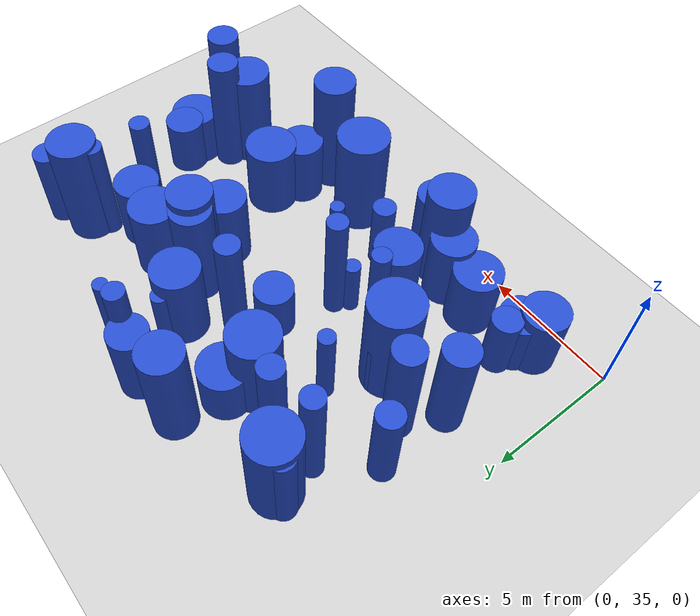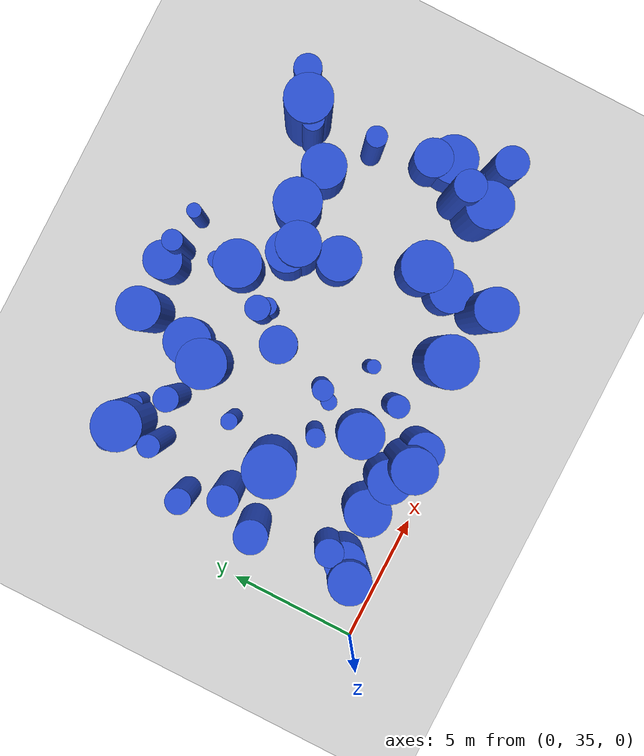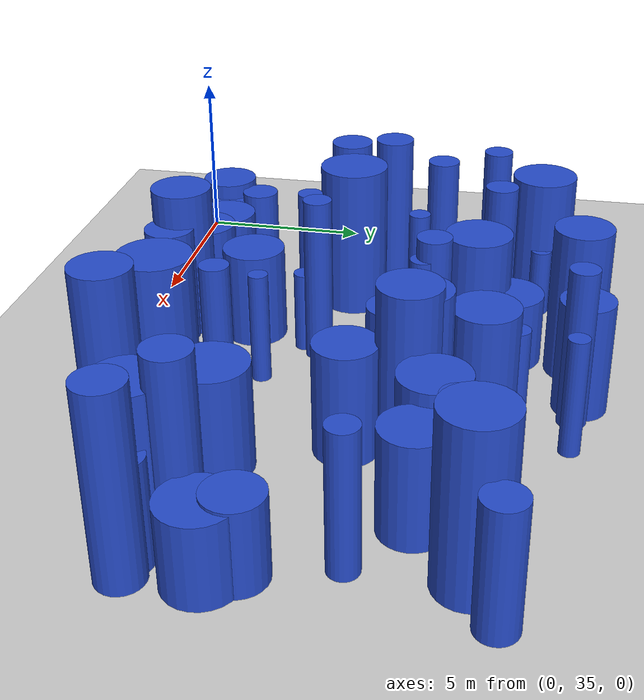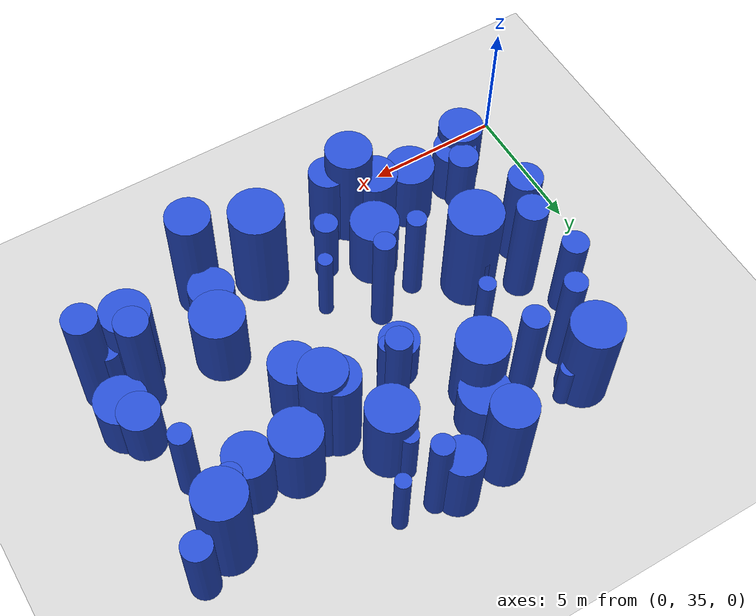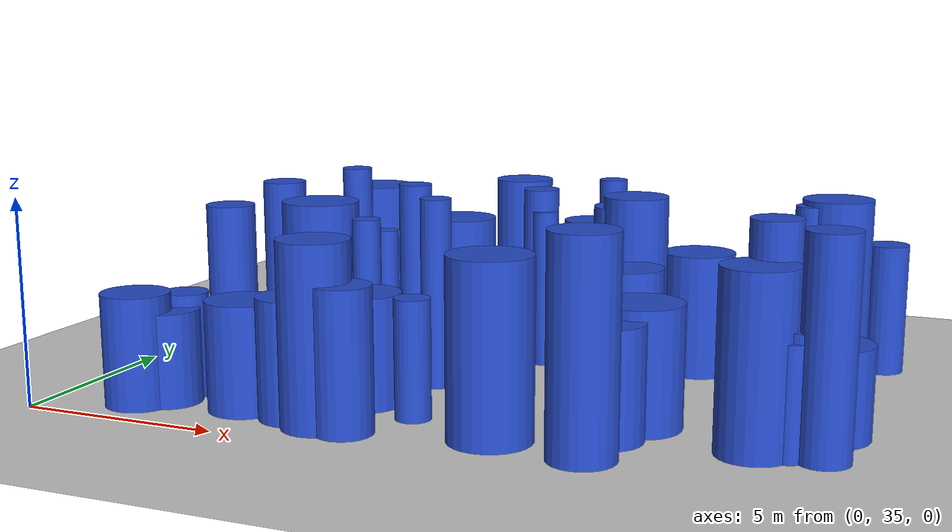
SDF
<sdf version="1.6">
 <world name="default">
  <model name="ground_plane">
   <static>1</static>
   <link name="link">
    <collision name="collision">
     <geometry><plane><normal>0 0 1</normal><size>100 100</size></plane></geometry>
     <surface><friction><ode><mu>100</mu><mu2>50</mu2></ode></friction></surface>
    </collision>
    <visual name="visual">
     <cast_shadows>0</cast_shadows>
     <geometry><plane><normal>0 0 1</normal><size>100 100</size></plane></geometry>
     <material>
      <script><uri>file://media/materials/scripts/gazebo.material</uri><name>Gazebo/Grey</name></script>
     </material>
    </visual>
   </link>
  </model>
  <model name="24">
   <static>0</static>
   <link name="link">
    <inertial>
     <mass>2</mass>
     <inertia><ixx>3.77941</ixx><ixy>0</ixy><ixz>0</ixz><iyy>3.77941</iyy><iyz>0</iyz><izz>0.148371</izz></inertia>
    </inertial>
    <collision name="collision">
     <geometry><cylinder><length>4.71502</length><radius>0.38519</radius></cylinder></geometry>
     <surface><contact><collide_without_contact>1</collide_without_contact></contact></surface>
    </collision>
    <visual name="visual">
     <geometry><cylinder><length>4.71502</length><radius>0.38519</radius></cylinder></geometry>
     <material>
      <script><uri>file://media/materials/scripts/gazebo.material</uri><name>Gazebo/Blue</name></script>
     </material>
    </visual>
    <gravity>0</gravity>
   </link>
   <pose>8.12711 40.4296 2.35751 0 -0 0</pose>
  </model>
  <model name="41">
   <static>0</static>
   <link name="link">
    <inertial>
     <mass>2</mass>
     <inertia><ixx>2.43129</ixx><ixy>0</ixy><ixz>0</ixz><iyy>2.43129</iyy><iyz>0</iyz><izz>0.15694</izz></inertia>
    </inertial>
    <collision name="collision">
     <geometry><cylinder><length>3.75725</length><radius>0.396156</radius></cylinder></geometry>
     <surface><contact><collide_without_contact>1</collide_without_contact></contact></surface>
    </collision>
    <visual name="visual">
     <geometry><cylinder><length>3.75725</length><radius>0.396156</radius></cylinder></geometry>
     <material>
      <script><uri>file://media/materials/scripts/gazebo.material</uri><name>Gazebo/Blue</name></script>
     </material>
    </visual>
    <gravity>0</gravity>
   </link>
   <pose>16.9986 42.8262 1.87863 0 -0 0</pose>
  </model>
  <model name="47">
   <static>0</static>
   <link name="link">
    <inertial>
     <mass>2</mass>
     <inertia><ixx>4.39041</ixx><ixy>0</ixy><ixz>0</ixz><iyy>4.39041</iyy><iyz>0</iyz><izz>0.626142</izz></inertia>
    </inertial>
    <collision name="collision">
     <geometry><cylinder><length>4.94611</length><radius>0.791291</radius></cylinder></geometry>
     <surface><contact><collide_without_contact>1</collide_without_contact></contact></surface>
    </collision>
    <visual name="visual">
     <geometry><cylinder><length>4.94611</length><radius>0.791291</radius></cylinder></geometry>
     <material>
      <script><uri>file://media/materials/scripts/gazebo.material</uri><name>Gazebo/Blue</name></script>
     </material>
    </visual>
    <gravity>0</gravity>
   </link>
   <pose>13.3403 36.3856 2.47306 0 -0 0</pose>
  </model>
  <model name="51">
   <static>0</static>
   <link name="link">
    <inertial>
     <mass>2</mass>
     <inertia><ixx>2.45508</ixx><ixy>0</ixy><ixz>0</ixz><iyy>2.45508</iyy><iyz>0</iyz><izz>0.2284</izz></inertia>
    </inertial>
    <collision name="collision">
     <geometry><cylinder><length>3.7477</length><radius>0.477912</radius></cylinder></geometry>
     <surface><contact><collide_without_contact>1</collide_without_contact></contact></surface>
    </collision>
    <visual name="visual">
     <geometry><cylinder><length>3.7477</length><radius>0.477912</radius></cylinder></geometry>
     <material>
      <script><uri>file://media/materials/scripts/gazebo.material</uri><name>Gazebo/Blue</name></script>
     </material>
    </visual>
    <gravity>0</gravity>
   </link>
   <pose>3.10571 46.4389 1.87385 0 -0 0</pose>
  </model>
  <model name="67">
   <static>0</static>
   <link name="link">
    <inertial>
     <mass>2</mass>
     <inertia><ixx>3.83548</ixx><ixy>0</ixy><ixz>0</ixz><iyy>3.83548</iyy><iyz>0</iyz><izz>0.673844</izz></inertia>
    </inertial>
    <collision name="collision">
     <geometry><cylinder><length>4.58163</length><radius>0.82088</radius></cylinder></geometry>
     <surface><contact><collide_without_contact>1</collide_without_contact></contact></surface>
    </collision>
    <visual name="visual">
     <geometry><cylinder><length>4.58163</length><radius>0.82088</radius></cylinder></geometry>
     <material>
      <script><uri>file://media/materials/scripts/gazebo.material</uri><name>Gazebo/Blue</name></script>
     </material>
    </visual>
    <gravity>0</gravity>
   </link>
   <pose>12.2633 43.5245 2.29082 0 -0 0</pose>
  </model>
  <model name="70">
   <static>0</static>
   <link name="link">
    <inertial>
     <mass>2</mass>
     <inertia>
      <ixx>1.68909</ixx>
      <ixy>0</ixy>
      <ixz>0</ixz>
      <iyy>1.68909</iyy>
      <iyz>0</iyz>
      <izz>0.0711109</izz>
     </inertia>
    </inertial>
    <collision name="collision">
     <geometry><cylinder><length>3.14979</length><radius>0.266666</radius></cylinder></geometry>
     <surface><contact><collide_without_contact>1</collide_without_contact></contact></surface>
    </collision>
    <visual name="visual">
     <geometry><cylinder><length>3.14979</length><radius>0.266666</radius></cylinder></geometry>
     <material>
      <script><uri>file://media/materials/scripts/gazebo.material</uri><name>Gazebo/Blue</name></script>
     </material>
    </visual>
    <gravity>0</gravity>
   </link>
   <pose>9.67754 39.1381 1.5749 0 -0 0</pose>
  </model>
  <model name="77">
   <static>0</static>
   <link name="link">
    <inertial>
     <mass>2</mass>
     <inertia><ixx>3.29642</ixx><ixy>0</ixy><ixz>0</ixz><iyy>3.29642</iyy><iyz>0</iyz><izz>0.149809</izz></inertia>
    </inertial>
    <collision name="collision">
     <geometry><cylinder><length>4.39648</length><radius>0.387051</radius></cylinder></geometry>
     <surface><contact><collide_without_contact>1</collide_without_contact></contact></surface>
    </collision>
    <visual name="visual">
     <geometry><cylinder><length>4.39648</length><radius>0.387051</radius></cylinder></geometry>
     <material>
      <script><uri>file://media/materials/scripts/gazebo.material</uri><name>Gazebo/Blue</name></script>
     </material>
    </visual>
    <gravity>0</gravity>
   </link>
   <pose>10.3762 47.5174 2.19824 0 -0 0</pose>
  </model>
  <model name="103">
   <static>0</static>
   <link name="link">
    <inertial>
     <mass>2</mass>
     <inertia><ixx>2.52847</ixx><ixy>0</ixy><ixz>0</ixz><iyy>2.52847</iyy><iyz>0</iyz><izz>0.874715</izz></inertia>
    </inertial>
    <collision name="collision">
     <geometry><cylinder><length>3.54213</length><radius>0.935262</radius></cylinder></geometry>
     <surface><contact><collide_without_contact>1</collide_without_contact></contact></surface>
    </collision>
    <visual name="visual">
     <geometry><cylinder><length>3.54213</length><radius>0.935262</radius></cylinder></geometry>
     <material>
      <script><uri>file://media/materials/scripts/gazebo.material</uri><name>Gazebo/Blue</name></script>
     </material>
    </visual>
    <gravity>0</gravity>
   </link>
   <pose>6.94051 44.7004 1.77107 0 -0 0</pose>
  </model>
  <model name="107">
   <static>0</static>
   <link name="link">
    <inertial>
     <mass>2</mass>
     <inertia><ixx>1.96436</ixx><ixy>0</ixy><ixz>0</ixz><iyy>1.96436</iyy><iyz>0</iyz><izz>0.272821</izz></inertia>
    </inertial>
    <collision name="collision">
     <geometry><cylinder><length>3.31175</length><radius>0.522322</radius></cylinder></geometry>
     <surface><contact><collide_without_contact>1</collide_without_contact></contact></surface>
    </collision>
    <visual name="visual">
     <geometry><cylinder><length>3.31175</length><radius>0.522322</radius></cylinder></geometry>
     <material>
      <script><uri>file://media/materials/scripts/gazebo.material</uri><name>Gazebo/Blue</name></script>
     </material>
    </visual>
    <gravity>0</gravity>
   </link>
   <pose>18.1658 46.183 1.65587 0 -0 0</pose>
  </model>
  <model name="109">
   <static>0</static>
   <link name="link">
    <inertial>
     <mass>2</mass>
     <inertia>
      <ixx>0.949774</ixx>
      <ixy>0</ixy>
      <ixz>0</ixz>
      <iyy>0.949774</iyy>
      <iyz>0</iyz>
      <izz>0.0924293</izz>
     </inertia>
    </inertial>
    <collision name="collision">
     <geometry><cylinder><length>2.32838</length><radius>0.304022</radius></cylinder></geometry>
     <surface><contact><collide_without_contact>1</collide_without_contact></contact></surface>
    </collision>
    <visual name="visual">
     <geometry><cylinder><length>2.32838</length><radius>0.304022</radius></cylinder></geometry>
     <material>
      <script><uri>file://media/materials/scripts/gazebo.material</uri><name>Gazebo/Blue</name></script>
     </material>
    </visual>
    <gravity>0</gravity>
   </link>
   <pose>7.77465 39.9579 1.16419 0 -0 0</pose>
  </model>
  <model name="112">
   <static>0</static>
   <link name="link">
    <inertial>
     <mass>2</mass>
     <inertia><ixx>1.24524</ixx><ixy>0</ixy><ixz>0</ixz><iyy>1.24524</iyy><iyz>0</iyz><izz>0.298264</izz></inertia>
    </inertial>
    <collision name="collision">
     <geometry><cylinder><length>2.56449</length><radius>0.546136</radius></cylinder></geometry>
     <surface><contact><collide_without_contact>1</collide_without_contact></contact></surface>
    </collision>
    <visual name="visual">
     <geometry><cylinder><length>2.56449</length><radius>0.546136</radius></cylinder></geometry>
     <material>
      <script><uri>file://media/materials/scripts/gazebo.material</uri><name>Gazebo/Blue</name></script>
     </material>
    </visual>
    <gravity>0</gravity>
   </link>
   <pose>2.86458 37.4236 1.28225 0 -0 0</pose>
  </model>
  <model name="123">
   <static>0</static>
   <link name="link">
    <inertial>
     <mass>2</mass>
     <inertia><ixx>4.2969</ixx><ixy>0</ixy><ixz>0</ixz><iyy>4.2969</iyy><iyz>0</iyz><izz>0.341178</izz></inertia>
    </inertial>
    <collision name="collision">
     <geometry><cylinder><length>4.97572</length><radius>0.584104</radius></cylinder></geometry>
     <surface><contact><collide_without_contact>1</collide_without_contact></contact></surface>
    </collision>
    <visual name="visual">
     <geometry><cylinder><length>4.97572</length><radius>0.584104</radius></cylinder></geometry>
     <material>
      <script><uri>file://media/materials/scripts/gazebo.material</uri><name>Gazebo/Blue</name></script>
     </material>
    </visual>
    <gravity>0</gravity>
   </link>
   <pose>16.7188 39.1376 2.48786 0 -0 0</pose>
  </model>
  <model name="124">
   <static>0</static>
   <link name="link">
    <inertial>
     <mass>2</mass>
     <inertia><ixx>1.56828</ixx><ixy>0</ixy><ixz>0</ixz><iyy>1.56828</iyy><iyz>0</iyz><izz>0.792169</izz></inertia>
    </inertial>
    <collision name="collision">
     <geometry><cylinder><length>2.65201</length><radius>0.890039</radius></cylinder></geometry>
     <surface><contact><collide_without_contact>1</collide_without_contact></contact></surface>
    </collision>
    <visual name="visual">
     <geometry><cylinder><length>2.65201</length><radius>0.890039</radius></cylinder></geometry>
     <material>
      <script><uri>file://media/materials/scripts/gazebo.material</uri><name>Gazebo/Blue</name></script>
     </material>
    </visual>
    <gravity>0</gravity>
   </link>
   <pose>4.8166 36.845 1.32601 0 -0 0</pose>
  </model>
  <model name="127">
   <static>0</static>
   <link name="link">
    <inertial>
     <mass>2</mass>
     <inertia><ixx>3.22287</ixx><ixy>0</ixy><ixz>0</ixz><iyy>3.22287</iyy><iyz>0</iyz><izz>0.762799</izz></inertia>
    </inertial>
    <collision name="collision">
     <geometry><cylinder><length>4.12902</length><radius>0.873384</radius></cylinder></geometry>
     <surface><contact><collide_without_contact>1</collide_without_contact></contact></surface>
    </collision>
    <visual name="visual">
     <geometry><cylinder><length>4.12902</length><radius>0.873384</radius></cylinder></geometry>
     <material>
      <script><uri>file://media/materials/scripts/gazebo.material</uri><name>Gazebo/Blue</name></script>
     </material>
    </visual>
    <gravity>0</gravity>
   </link>
   <pose>16.6059 38.1571 2.06451 0 -0 0</pose>
  </model>
  <model name="136">
   <static>0</static>
   <link name="link">
    <inertial>
     <mass>2</mass>
     <inertia><ixx>3.70332</ixx><ixy>0</ixy><ixz>0</ixz><iyy>3.70332</iyy><iyz>0</iyz><izz>0.955801</izz></inertia>
    </inertial>
    <collision name="collision">
     <geometry><cylinder><length>4.39915</length><radius>0.977651</radius></cylinder></geometry>
     <surface><contact><collide_without_contact>1</collide_without_contact></contact></surface>
    </collision>
    <visual name="visual">
     <geometry><cylinder><length>4.39915</length><radius>0.977651</radius></cylinder></geometry>
     <material>
      <script><uri>file://media/materials/scripts/gazebo.material</uri><name>Gazebo/Blue</name></script>
     </material>
    </visual>
    <gravity>0</gravity>
   </link>
   <pose>4.72085 40.8118 2.19957 0 -0 0</pose>
  </model>
  <model name="144">
   <static>0</static>
   <link name="link">
    <inertial>
     <mass>2</mass>
     <inertia><ixx>1.62736</ixx><ixy>0</ixy><ixz>0</ixz><iyy>1.62736</iyy><iyz>0</iyz><izz>0.775463</izz></inertia>
    </inertial>
    <collision name="collision">
     <geometry><cylinder><length>2.72723</length><radius>0.880604</radius></cylinder></geometry>
     <surface><contact><collide_without_contact>1</collide_without_contact></contact></surface>
    </collision>
    <visual name="visual">
     <geometry><cylinder><length>2.72723</length><radius>0.880604</radius></cylinder></geometry>
     <material>
      <script><uri>file://media/materials/scripts/gazebo.material</uri><name>Gazebo/Blue</name></script>
     </material>
    </visual>
    <gravity>0</gravity>
   </link>
   <pose>7.22925 38.3606 1.36361 0 -0 0</pose>
  </model>
  <model name="148">
   <static>0</static>
   <link name="link">
    <inertial>
     <mass>2</mass>
     <inertia><ixx>3.77434</ixx><ixy>0</ixy><ixz>0</ixz><iyy>3.77434</iyy><iyz>0</iyz><izz>0.802966</izz></inertia>
    </inertial>
    <collision name="collision">
     <geometry><cylinder><length>4.49857</length><radius>0.896084</radius></cylinder></geometry>
     <surface><contact><collide_without_contact>1</collide_without_contact></contact></surface>
    </collision>
    <visual name="visual">
     <geometry><cylinder><length>4.49857</length><radius>0.896084</radius></cylinder></geometry>
     <material>
      <script><uri>file://media/materials/scripts/gazebo.material</uri><name>Gazebo/Blue</name></script>
     </material>
    </visual>
    <gravity>0</gravity>
   </link>
   <pose>16.9609 45.5384 2.24929 0 -0 0</pose>
  </model>
  <model name="149">
   <static>0</static>
   <link name="link">
    <inertial>
     <mass>2</mass>
     <inertia>
      <ixx>1.56013</ixx>
      <ixy>0</ixy>
      <ixz>0</ixz>
      <iyy>1.56013</iyy>
      <iyz>0</iyz>
      <izz>0.0696492</izz>
     </inertia>
    </inertial>
    <collision name="collision">
     <geometry><cylinder><length>3.0252</length><radius>0.263911</radius></cylinder></geometry>
     <surface><contact><collide_without_contact>1</collide_without_contact></contact></surface>
    </collision>
    <visual name="visual">
     <geometry><cylinder><length>3.0252</length><radius>0.263911</radius></cylinder></geometry>
     <material>
      <script><uri>file://media/materials/scripts/gazebo.material</uri><name>Gazebo/Blue</name></script>
     </material>
    </visual>
    <gravity>0</gravity>
   </link>
   <pose>4.93171 40.2692 1.5126 0 -0 0</pose>
  </model>
  <model name="150">
   <static>0</static>
   <link name="link">
    <inertial>
     <mass>2</mass>
     <inertia>
      <ixx>0.989811</ixx>
      <ixy>0</ixy>
      <ixz>0</ixz>
      <iyy>0.989811</iyy>
      <iyz>0</iyz>
      <izz>0.088194</izz>
     </inertia>
    </inertial>
    <collision name="collision">
     <geometry><cylinder><length>2.38208</length><radius>0.296975</radius></cylinder></geometry>
     <surface><contact><collide_without_contact>1</collide_without_contact></contact></surface>
    </collision>
    <visual name="visual">
     <geometry><cylinder><length>2.38208</length><radius>0.296975</radius></cylinder></geometry>
     <material>
      <script><uri>file://media/materials/scripts/gazebo.material</uri><name>Gazebo/Blue</name></script>
     </material>
    </visual>
    <gravity>0</gravity>
   </link>
   <pose>4.71128 41.4967 1.19104 0 -0 0</pose>
  </model>
  <model name="153">
   <static>0</static>
   <link name="link">
    <inertial>
     <mass>2</mass>
     <inertia>
      <ixx>1.95078</ixx>
      <ixy>0</ixy>
      <ixz>0</ixz>
      <iyy>1.95078</iyy>
      <iyz>0</iyz>
      <izz>0.0955632</izz>
     </inertia>
    </inertial>
    <collision name="collision">
     <geometry><cylinder><length>3.37906</length><radius>0.309133</radius></cylinder></geometry>
     <surface><contact><collide_without_contact>1</collide_without_contact></contact></surface>
    </collision>
    <visual name="visual">
     <geometry><cylinder><length>3.37906</length><radius>0.309133</radius></cylinder></geometry>
     <material>
      <script><uri>file://media/materials/scripts/gazebo.material</uri><name>Gazebo/Blue</name></script>
     </material>
    </visual>
    <gravity>0</gravity>
   </link>
   <pose>5.55025 42.8779 1.68953 0 -0 0</pose>
  </model>
  <model name="161">
   <static>0</static>
   <link name="link">
    <inertial>
     <mass>2</mass>
     <inertia><ixx>3.76279</ixx><ixy>0</ixy><ixz>0</ixz><iyy>3.76279</iyy><iyz>0</iyz><izz>0.168409</izz></inertia>
    </inertial>
    <collision name="collision">
     <geometry><cylinder><length>4.69803</length><radius>0.410377</radius></cylinder></geometry>
     <surface><contact><collide_without_contact>1</collide_without_contact></contact></surface>
    </collision>
    <visual name="visual">
     <geometry><cylinder><length>4.69803</length><radius>0.410377</radius></cylinder></geometry>
     <material>
      <script><uri>file://media/materials/scripts/gazebo.material</uri><name>Gazebo/Blue</name></script>
     </material>
    </visual>
    <gravity>0</gravity>
   </link>
   <pose>3.6196 44.9291 2.34902 0 -0 0</pose>
  </model>
  <model name="175">
   <static>0</static>
   <link name="link">
    <inertial>
     <mass>2</mass>
     <inertia><ixx>2.04164</ixx><ixy>0</ixy><ixz>0</ixz><iyy>2.04164</iyy><iyz>0</iyz><izz>0.831871</izz></inertia>
    </inertial>
    <collision name="collision">
     <geometry><cylinder><length>3.12318</length><radius>0.91207</radius></cylinder></geometry>
     <surface><contact><collide_without_contact>1</collide_without_contact></contact></surface>
    </collision>
    <visual name="visual">
     <geometry><cylinder><length>3.12318</length><radius>0.91207</radius></cylinder></geometry>
     <material>
      <script><uri>file://media/materials/scripts/gazebo.material</uri><name>Gazebo/Blue</name></script>
     </material>
    </visual>
    <gravity>0</gravity>
   </link>
   <pose>13.7304 44.3128 1.56159 0 -0 0</pose>
  </model>
  <model name="191">
   <static>0</static>
   <link name="link">
    <inertial>
     <mass>2</mass>
     <inertia><ixx>2.78748</ixx><ixy>0</ixy><ixz>0</ixz><iyy>2.78748</iyy><iyz>0</iyz><izz>0.109121</izz></inertia>
    </inertial>
    <collision name="collision">
     <geometry><cylinder><length>4.04939</length><radius>0.330335</radius></cylinder></geometry>
     <surface><contact><collide_without_contact>1</collide_without_contact></contact></surface>
    </collision>
    <visual name="visual">
     <geometry><cylinder><length>4.04939</length><radius>0.330335</radius></cylinder></geometry>
     <material>
      <script><uri>file://media/materials/scripts/gazebo.material</uri><name>Gazebo/Blue</name></script>
     </material>
    </visual>
    <gravity>0</gravity>
   </link>
   <pose>9.8422 43.5022 2.02469 0 -0 0</pose>
  </model>
  <model name="193">
   <static>0</static>
   <link name="link">
    <inertial>
     <mass>2</mass>
     <inertia><ixx>1.21033</ixx><ixy>0</ixy><ixz>0</ixz><iyy>1.21033</iyy><iyz>0</iyz><izz>0.860285</izz></inertia>
    </inertial>
    <collision name="collision">
     <geometry><cylinder><length>2.16359</length><radius>0.927516</radius></cylinder></geometry>
     <surface><contact><collide_without_contact>1</collide_without_contact></contact></surface>
    </collision>
    <visual name="visual">
     <geometry><cylinder><length>2.16359</length><radius>0.927516</radius></cylinder></geometry>
     <material>
      <script><uri>file://media/materials/scripts/gazebo.material</uri><name>Gazebo/Blue</name></script>
     </material>
    </visual>
    <gravity>0</gravity>
   </link>
   <pose>17.8982 39.943 1.08179 0 -0 0</pose>
  </model>
  <model name="201">
   <static>0</static>
   <link name="link">
    <inertial>
     <mass>2</mass>
     <inertia><ixx>1.10359</ixx><ixy>0</ixy><ixz>0</ixz><iyy>1.10359</iyy><iyz>0</iyz><izz>0.841668</izz></inertia>
    </inertial>
    <collision name="collision">
     <geometry><cylinder><length>2.024</length><radius>0.917424</radius></cylinder></geometry>
     <surface><contact><collide_without_contact>1</collide_without_contact></contact></surface>
    </collision>
    <visual name="visual">
     <geometry><cylinder><length>2.024</length><radius>0.917424</radius></cylinder></geometry>
     <material>
      <script><uri>file://media/materials/scripts/gazebo.material</uri><name>Gazebo/Blue</name></script>
     </material>
    </visual>
    <gravity>0</gravity>
   </link>
   <pose>7.36399 45.673 1.012 0 -0 0</pose>
  </model>
  <model name="217">
   <static>0</static>
   <link name="link">
    <inertial>
     <mass>2</mass>
     <inertia>
      <ixx>0.720912</ixx>
      <ixy>0</ixy>
      <ixz>0</ixz>
      <iyy>0.720912</iyy>
      <iyz>0</iyz>
      <izz>0.0930883</izz>
     </inertia>
    </inertial>
    <collision name="collision">
     <geometry><cylinder><length>2.01152</length><radius>0.305104</radius></cylinder></geometry>
     <surface><contact><collide_without_contact>1</collide_without_contact></contact></surface>
    </collision>
    <visual name="visual">
     <geometry><cylinder><length>2.01152</length><radius>0.305104</radius></cylinder></geometry>
     <material>
      <script><uri>file://media/materials/scripts/gazebo.material</uri><name>Gazebo/Blue</name></script>
     </material>
    </visual>
    <gravity>0</gravity>
   </link>
   <pose>4.47146 46.3874 1.00576 0 -0 0</pose>
  </model>
  <model name="228">
   <static>0</static>
   <link name="link">
    <inertial>
     <mass>2</mass>
     <inertia><ixx>3.16618</ixx><ixy>0</ixy><ixz>0</ixz><iyy>3.16618</iyy><iyz>0</iyz><izz>0.858592</izz></inertia>
    </inertial>
    <collision name="collision">
     <geometry><cylinder><length>4.05232</length><radius>0.926602</radius></cylinder></geometry>
     <surface><contact><collide_without_contact>1</collide_without_contact></contact></surface>
    </collision>
    <visual name="visual">
     <geometry><cylinder><length>4.05232</length><radius>0.926602</radius></cylinder></geometry>
     <material>
      <script><uri>file://media/materials/scripts/gazebo.material</uri><name>Gazebo/Blue</name></script>
     </material>
    </visual>
    <gravity>0</gravity>
   </link>
   <pose>3.64013 46.3281 2.02616 0 -0 0</pose>
  </model>
  <model name="233">
   <static>0</static>
   <link name="link">
    <inertial>
     <mass>2</mass>
     <inertia><ixx>3.37901</ixx><ixy>0</ixy><ixz>0</ixz><iyy>3.37901</iyy><iyz>0</iyz><izz>0.638213</izz></inertia>
    </inertial>
    <collision name="collision">
     <geometry><cylinder><length>4.28479</length><radius>0.798883</radius></cylinder></geometry>
     <surface><contact><collide_without_contact>1</collide_without_contact></contact></surface>
    </collision>
    <visual name="visual">
     <geometry><cylinder><length>4.28479</length><radius>0.798883</radius></cylinder></geometry>
     <material>
      <script><uri>file://media/materials/scripts/gazebo.material</uri><name>Gazebo/Blue</name></script>
     </material>
    </visual>
    <gravity>0</gravity>
   </link>
   <pose>7.70317 47.4986 2.14239 0 -0 0</pose>
  </model>
  <model name="244">
   <static>0</static>
   <link name="link">
    <inertial>
     <mass>2</mass>
     <inertia><ixx>1.74262</ixx><ixy>0</ixy><ixz>0</ixz><iyy>1.74262</iyy><iyz>0</iyz><izz>0.701645</izz></inertia>
    </inertial>
    <collision name="collision">
     <geometry><cylinder><length>2.88977</length><radius>0.837642</radius></cylinder></geometry>
     <surface><contact><collide_without_contact>1</collide_without_contact></contact></surface>
    </collision>
    <visual name="visual">
     <geometry><cylinder><length>2.88977</length><radius>0.837642</radius></cylinder></geometry>
     <material>
      <script><uri>file://media/materials/scripts/gazebo.material</uri><name>Gazebo/Blue</name></script>
     </material>
    </visual>
    <gravity>0</gravity>
   </link>
   <pose>6.22746 36.6822 1.44489 0 -0 0</pose>
  </model>
  <model name="249">
   <static>0</static>
   <link name="link">
    <inertial>
     <mass>2</mass>
     <inertia><ixx>1.94318</ixx><ixy>0</ixy><ixz>0</ixz><iyy>1.94318</iyy><iyz>0</iyz><izz>0.526208</izz></inertia>
    </inertial>
    <collision name="collision">
     <geometry><cylinder><length>3.17497</length><radius>0.725402</radius></cylinder></geometry>
     <surface><contact><collide_without_contact>1</collide_without_contact></contact></surface>
    </collision>
    <visual name="visual">
     <geometry><cylinder><length>3.17497</length><radius>0.725402</radius></cylinder></geometry>
     <material>
      <script><uri>file://media/materials/scripts/gazebo.material</uri><name>Gazebo/Blue</name></script>
     </material>
    </visual>
    <gravity>0</gravity>
   </link>
   <pose>9.62949 47.6964 1.58749 0 -0 0</pose>
  </model>
  <model name="257">
   <static>0</static>
   <link name="link">
    <inertial>
     <mass>2</mass>
     <inertia><ixx>4.27208</ixx><ixy>0</ixy><ixz>0</ixz><iyy>4.27208</iyy><iyz>0</iyz><izz>0.363037</izz></inertia>
    </inertial>
    <collision name="collision">
     <geometry><cylinder><length>4.95412</length><radius>0.602525</radius></cylinder></geometry>
     <surface><contact><collide_without_contact>1</collide_without_contact></contact></surface>
    </collision>
    <visual name="visual">
     <geometry><cylinder><length>4.95412</length><radius>0.602525</radius></cylinder></geometry>
     <material>
      <script><uri>file://media/materials/scripts/gazebo.material</uri><name>Gazebo/Blue</name></script>
     </material>
    </visual>
    <gravity>0</gravity>
   </link>
   <pose>18.08 38.2163 2.47706 0 -0 0</pose>
  </model>
  <model name="258">
   <static>0</static>
   <link name="link">
    <inertial>
     <mass>2</mass>
     <inertia><ixx>2.163</ixx><ixy>0</ixy><ixz>0</ixz><iyy>2.163</iyy><iyz>0</iyz><izz>0.485658</izz></inertia>
    </inertial>
    <collision name="collision">
     <geometry><cylinder><length>3.39426</length><radius>0.696892</radius></cylinder></geometry>
     <surface><contact><collide_without_contact>1</collide_without_contact></contact></surface>
    </collision>
    <visual name="visual">
     <geometry><cylinder><length>3.39426</length><radius>0.696892</radius></cylinder></geometry>
     <material>
      <script><uri>file://media/materials/scripts/gazebo.material</uri><name>Gazebo/Blue</name></script>
     </material>
    </visual>
    <gravity>0</gravity>
   </link>
   <pose>7.82364 36.1075 1.69713 0 -0 0</pose>
  </model>
  <model name="260">
   <static>0</static>
   <link name="link">
    <inertial>
     <mass>2</mass>
     <inertia><ixx>2.98662</ixx><ixy>0</ixy><ixz>0</ixz><iyy>2.98662</iyy><iyz>0</iyz><izz>0.123577</izz></inertia>
    </inertial>
    <collision name="collision">
     <geometry><cylinder><length>4.18915</length><radius>0.351536</radius></cylinder></geometry>
     <surface><contact><collide_without_contact>1</collide_without_contact></contact></surface>
    </collision>
    <visual name="visual">
     <geometry><cylinder><length>4.18915</length><radius>0.351536</radius></cylinder></geometry>
     <material>
      <script><uri>file://media/materials/scripts/gazebo.material</uri><name>Gazebo/Blue</name></script>
     </material>
    </visual>
    <gravity>0</gravity>
   </link>
   <pose>6.50693 39.8801 2.09458 0 -0 0</pose>
  </model>
  <model name="274">
   <static>0</static>
   <link name="link">
    <inertial>
     <mass>2</mass>
     <inertia><ixx>1.88267</ixx><ixy>0</ixy><ixz>0</ixz><iyy>1.88267</iyy><iyz>0</iyz><izz>0.943516</izz></inertia>
    </inertial>
    <collision name="collision">
     <geometry><cylinder><length>2.90955</length><radius>0.971348</radius></cylinder></geometry>
     <surface><contact><collide_without_contact>1</collide_without_contact></contact></surface>
    </collision>
    <visual name="visual">
     <geometry><cylinder><length>2.90955</length><radius>0.971348</radius></cylinder></geometry>
     <material>
      <script><uri>file://media/materials/scripts/gazebo.material</uri><name>Gazebo/Blue</name></script>
     </material>
    </visual>
    <gravity>0</gravity>
   </link>
   <pose>13.8131 39.0635 1.45478 0 -0 0</pose>
  </model>
  <model name="281">
   <static>0</static>
   <link name="link">
    <inertial>
     <mass>2</mass>
     <inertia><ixx>3.61277</ixx><ixy>0</ixy><ixz>0</ixz><iyy>3.61277</iyy><iyz>0</iyz><izz>0.209908</izz></inertia>
    </inertial>
    <collision name="collision">
     <geometry><cylinder><length>4.58769</length><radius>0.458157</radius></cylinder></geometry>
     <surface><contact><collide_without_contact>1</collide_without_contact></contact></surface>
    </collision>
    <visual name="visual">
     <geometry><cylinder><length>4.58769</length><radius>0.458157</radius></cylinder></geometry>
     <material>
      <script><uri>file://media/materials/scripts/gazebo.material</uri><name>Gazebo/Blue</name></script>
     </material>
    </visual>
    <gravity>0</gravity>
   </link>
   <pose>9.6243 43.7653 2.29384 0 -0 0</pose>
  </model>
  <model name="300">
   <static>0</static>
   <link name="link">
    <inertial>
     <mass>2</mass>
     <inertia><ixx>3.24895</ixx><ixy>0</ixy><ixz>0</ixz><iyy>3.24895</iyy><iyz>0</iyz><izz>0.167088</izz></inertia>
    </inertial>
    <collision name="collision">
     <geometry><cylinder><length>4.35803</length><radius>0.408764</radius></cylinder></geometry>
     <surface><contact><collide_without_contact>1</collide_without_contact></contact></surface>
    </collision>
    <visual name="visual">
     <geometry><cylinder><length>4.35803</length><radius>0.408764</radius></cylinder></geometry>
     <material>
      <script><uri>file://media/materials/scripts/gazebo.material</uri><name>Gazebo/Blue</name></script>
     </material>
    </visual>
    <gravity>0</gravity>
   </link>
   <pose>16.3887 45.0721 2.17902 0 -0 0</pose>
  </model>
  <model name="302">
   <static>0</static>
   <link name="link">
    <inertial>
     <mass>2</mass>
     <inertia><ixx>1.46096</ixx><ixy>0</ixy><ixz>0</ixz><iyy>1.46096</iyy><iyz>0</iyz><izz>0.185764</izz></inertia>
    </inertial>
    <collision name="collision">
     <geometry><cylinder><length>2.86505</length><radius>0.431004</radius></cylinder></geometry>
     <surface><contact><collide_without_contact>1</collide_without_contact></contact></surface>
    </collision>
    <visual name="visual">
     <geometry><cylinder><length>2.86505</length><radius>0.431004</radius></cylinder></geometry>
     <material>
      <script><uri>file://media/materials/scripts/gazebo.material</uri><name>Gazebo/Blue</name></script>
     </material>
    </visual>
    <gravity>0</gravity>
   </link>
   <pose>8.79788 37.6596 1.43252 0 -0 0</pose>
  </model>
  <model name="308">
   <static>0</static>
   <link name="link">
    <inertial>
     <mass>2</mass>
     <inertia><ixx>3.40626</ixx><ixy>0</ixy><ixz>0</ixz><iyy>3.40626</iyy><iyz>0</iyz><izz>0.976851</izz></inertia>
    </inertial>
    <collision name="collision">
     <geometry><cylinder><length>4.18414</length><radius>0.988358</radius></cylinder></geometry>
     <surface><contact><collide_without_contact>1</collide_without_contact></contact></surface>
    </collision>
    <visual name="visual">
     <geometry><cylinder><length>4.18414</length><radius>0.988358</radius></cylinder></geometry>
     <material>
      <script><uri>file://media/materials/scripts/gazebo.material</uri><name>Gazebo/Blue</name></script>
     </material>
    </visual>
    <gravity>0</gravity>
   </link>
   <pose>11.0567 36.8413 2.09207 0 -0 0</pose>
  </model>
  <model name="320">
   <static>0</static>
   <link name="link">
    <inertial>
     <mass>2</mass>
     <inertia><ixx>1.65125</ixx><ixy>0</ixy><ixz>0</ixz><iyy>1.65125</iyy><iyz>0</iyz><izz>0.72156</izz></inertia>
    </inertial>
    <collision name="collision">
     <geometry><cylinder><length>2.7826</length><radius>0.849447</radius></cylinder></geometry>
     <surface><contact><collide_without_contact>1</collide_without_contact></contact></surface>
    </collision>
    <visual name="visual">
     <geometry><cylinder><length>2.7826</length><radius>0.849447</radius></cylinder></geometry>
     <material>
      <script><uri>file://media/materials/scripts/gazebo.material</uri><name>Gazebo/Blue</name></script>
     </material>
    </visual>
    <gravity>0</gravity>
   </link>
   <pose>15.3691 44.0783 1.3913 0 -0 0</pose>
  </model>
  <model name="321">
   <static>0</static>
   <link name="link">
    <inertial>
     <mass>2</mass>
     <inertia><ixx>3.83467</ixx><ixy>0</ixy><ixz>0</ixz><iyy>3.83467</iyy><iyz>0</iyz><izz>0.315015</izz></inertia>
    </inertial>
    <collision name="collision">
     <geometry><cylinder><length>4.69712</length><radius>0.561262</radius></cylinder></geometry>
     <surface><contact><collide_without_contact>1</collide_without_contact></contact></surface>
    </collision>
    <visual name="visual">
     <geometry><cylinder><length>4.69712</length><radius>0.561262</radius></cylinder></geometry>
     <material>
      <script><uri>file://media/materials/scripts/gazebo.material</uri><name>Gazebo/Blue</name></script>
     </material>
    </visual>
    <gravity>0</gravity>
   </link>
   <pose>3.11663 41.7697 2.34856 0 -0 0</pose>
  </model>
  <model name="327">
   <static>0</static>
   <link name="link">
    <inertial>
     <mass>2</mass>
     <inertia><ixx>1.10869</ixx><ixy>0</ixy><ixz>0</ixz><iyy>1.10869</iyy><iyz>0</iyz><izz>0.553855</izz></inertia>
    </inertial>
    <collision name="collision">
     <geometry><cylinder><length>2.23396</length><radius>0.744214</radius></cylinder></geometry>
     <surface><contact><collide_without_contact>1</collide_without_contact></contact></surface>
    </collision>
    <visual name="visual">
     <geometry><cylinder><length>2.23396</length><radius>0.744214</radius></cylinder></geometry>
     <material>
      <script><uri>file://media/materials/scripts/gazebo.material</uri><name>Gazebo/Blue</name></script>
     </material>
    </visual>
    <gravity>0</gravity>
   </link>
   <pose>17.5872 40.6451 1.11698 0 -0 0</pose>
  </model>
  <model name="331">
   <static>0</static>
   <link name="link">
    <inertial>
     <mass>2</mass>
     <inertia><ixx>1.53195</ixx><ixy>0</ixy><ixz>0</ixz><iyy>1.53195</iyy><iyz>0</iyz><izz>0.672093</izz></inertia>
    </inertial>
    <collision name="collision">
     <geometry><cylinder><length>2.67869</length><radius>0.819813</radius></cylinder></geometry>
     <surface><contact><collide_without_contact>1</collide_without_contact></contact></surface>
    </collision>
    <visual name="visual">
     <geometry><cylinder><length>2.67869</length><radius>0.819813</radius></cylinder></geometry>
     <material>
      <script><uri>file://media/materials/scripts/gazebo.material</uri><name>Gazebo/Blue</name></script>
     </material>
    </visual>
    <gravity>0</gravity>
   </link>
   <pose>13.4401 37.8543 1.33935 0 -0 0</pose>
  </model>
  <model name="335">
   <static>0</static>
   <link name="link">
    <inertial>
     <mass>2</mass>
     <inertia><ixx>3.33476</ixx><ixy>0</ixy><ixz>0</ixz><iyy>3.33476</iyy><iyz>0</iyz><izz>0.594148</izz></inertia>
    </inertial>
    <collision name="collision">
     <geometry><cylinder><length>4.26921</length><radius>0.77081</radius></cylinder></geometry>
     <surface><contact><collide_without_contact>1</collide_without_contact></contact></surface>
    </collision>
    <visual name="visual">
     <geometry><cylinder><length>4.26921</length><radius>0.77081</radius></cylinder></geometry>
     <material>
      <script><uri>file://media/materials/scripts/gazebo.material</uri><name>Gazebo/Blue</name></script>
     </material>
    </visual>
    <gravity>0</gravity>
   </link>
   <pose>11.8724 43.7785 2.1346 0 -0 0</pose>
  </model>
  <model name="351">
   <static>0</static>
   <link name="link">
    <inertial>
     <mass>2</mass>
     <inertia><ixx>1.2338</ixx><ixy>0</ixy><ixz>0</ixz><iyy>1.2338</iyy><iyz>0</iyz><izz>0.101336</izz></inertia>
    </inertial>
    <collision name="collision">
     <geometry><cylinder><length>2.66436</length><radius>0.318333</radius></cylinder></geometry>
     <surface><contact><collide_without_contact>1</collide_without_contact></contact></surface>
    </collision>
    <visual name="visual">
     <geometry><cylinder><length>2.66436</length><radius>0.318333</radius></cylinder></geometry>
     <material>
      <script><uri>file://media/materials/scripts/gazebo.material</uri><name>Gazebo/Blue</name></script>
     </material>
    </visual>
    <gravity>0</gravity>
   </link>
   <pose>10.5482 46.0363 1.33218 0 -0 0</pose>
  </model>
  <model name="365">
   <static>0</static>
   <link name="link">
    <inertial>
     <mass>2</mass>
     <inertia><ixx>2.4537</ixx><ixy>0</ixy><ixz>0</ixz><iyy>2.4537</iyy><iyz>0</iyz><izz>0.230047</izz></inertia>
    </inertial>
    <collision name="collision">
     <geometry><cylinder><length>3.74594</length><radius>0.479632</radius></cylinder></geometry>
     <surface><contact><collide_without_contact>1</collide_without_contact></contact></surface>
    </collision>
    <visual name="visual">
     <geometry><cylinder><length>3.74594</length><radius>0.479632</radius></cylinder></geometry>
     <material>
      <script><uri>file://media/materials/scripts/gazebo.material</uri><name>Gazebo/Blue</name></script>
     </material>
    </visual>
    <gravity>0</gravity>
   </link>
   <pose>2.21589 43.184 1.87297 0 -0 0</pose>
  </model>
  <model name="380">
   <static>0</static>
   <link name="link">
    <inertial>
     <mass>2</mass>
     <inertia><ixx>1.43417</ixx><ixy>0</ixy><ixz>0</ixz><iyy>1.43417</iyy><iyz>0</iyz><izz>0.251022</izz></inertia>
    </inertial>
    <collision name="collision">
     <geometry><cylinder><length>2.80214</length><radius>0.501021</radius></cylinder></geometry>
     <surface><contact><collide_without_contact>1</collide_without_contact></contact></surface>
    </collision>
    <visual name="visual">
     <geometry><cylinder><length>2.80214</length><radius>0.501021</radius></cylinder></geometry>
     <material>
      <script><uri>file://media/materials/scripts/gazebo.material</uri><name>Gazebo/Blue</name></script>
     </material>
    </visual>
    <gravity>0</gravity>
   </link>
   <pose>17.5604 38.3113 1.40107 0 -0 0</pose>
  </model>
  <model name="389">
   <static>0</static>
   <link name="link">
    <inertial>
     <mass>2</mass>
     <inertia><ixx>1.16901</ixx><ixy>0</ixy><ixz>0</ixz><iyy>1.16901</iyy><iyz>0</iyz><izz>0.107043</izz></inertia>
    </inertial>
    <collision name="collision">
     <geometry><cylinder><length>2.58707</length><radius>0.327174</radius></cylinder></geometry>
     <surface><contact><collide_without_contact>1</collide_without_contact></contact></surface>
    </collision>
    <visual name="visual">
     <geometry><cylinder><length>2.58707</length><radius>0.327174</radius></cylinder></geometry>
     <material>
      <script><uri>file://media/materials/scripts/gazebo.material</uri><name>Gazebo/Blue</name></script>
     </material>
    </visual>
    <gravity>0</gravity>
   </link>
   <pose>17.3742 37.997 1.29353 0 -0 0</pose>
  </model>
  <model name="391">
   <static>0</static>
   <link name="link">
    <inertial>
     <mass>2</mass>
     <inertia>
      <ixx>1.77857</ixx>
      <ixy>0</ixy>
      <ixz>0</ixz>
      <iyy>1.77857</iyy>
      <iyz>0</iyz>
      <izz>0.0766056</izz>
     </inertia>
    </inertial>
    <collision name="collision">
     <geometry><cylinder><length>3.23134</length><radius>0.276777</radius></cylinder></geometry>
     <surface><contact><collide_without_contact>1</collide_without_contact></contact></surface>
    </collision>
    <visual name="visual">
     <geometry><cylinder><length>3.23134</length><radius>0.276777</radius></cylinder></geometry>
     <material>
      <script><uri>file://media/materials/scripts/gazebo.material</uri><name>Gazebo/Blue</name></script>
     </material>
    </visual>
    <gravity>0</gravity>
   </link>
   <pose>11.7278 47.4916 1.61567 0 -0 0</pose>
  </model>
  <model name="394">
   <static>0</static>
   <link name="link">
    <inertial>
     <mass>2</mass>
     <inertia><ixx>3.18966</ixx><ixy>0</ixy><ixz>0</ixz><iyy>3.18966</iyy><iyz>0</iyz><izz>0.389553</izz></inertia>
    </inertial>
    <collision name="collision">
     <geometry><cylinder><length>4.23902</length><radius>0.624142</radius></cylinder></geometry>
     <surface><contact><collide_without_contact>1</collide_without_contact></contact></surface>
    </collision>
    <visual name="visual">
     <geometry><cylinder><length>4.23902</length><radius>0.624142</radius></cylinder></geometry>
     <material>
      <script><uri>file://media/materials/scripts/gazebo.material</uri><name>Gazebo/Blue</name></script>
     </material>
    </visual>
    <gravity>0</gravity>
   </link>
   <pose>2.3538 40.3178 2.11951 0 -0 0</pose>
  </model>
  <model name="438">
   <static>0</static>
   <link name="link">
    <inertial>
     <mass>2</mass>
     <inertia><ixx>2.24096</ixx><ixy>0</ixy><ixz>0</ixz><iyy>2.24096</iyy><iyz>0</iyz><izz>0.807712</izz></inertia>
    </inertial>
    <collision name="collision">
     <geometry><cylinder><length>3.32004</length><radius>0.898728</radius></cylinder></geometry>
     <surface><contact><collide_without_contact>1</collide_without_contact></contact></surface>
    </collision>
    <visual name="visual">
     <geometry><cylinder><length>3.32004</length><radius>0.898728</radius></cylinder></geometry>
     <material>
      <script><uri>file://media/materials/scripts/gazebo.material</uri><name>Gazebo/Blue</name></script>
     </material>
    </visual>
    <gravity>0</gravity>
   </link>
   <pose>10.7387 45.217 1.66002 0 -0 0</pose>
  </model>
  <model name="439">
   <static>0</static>
   <link name="link">
    <inertial>
     <mass>2</mass>
     <inertia><ixx>3.18101</ixx><ixy>0</ixy><ixz>0</ixz><iyy>3.18101</iyy><iyz>0</iyz><izz>0.215295</izz></inertia>
    </inertial>
    <collision name="collision">
     <geometry><cylinder><length>4.2942</length><radius>0.463999</radius></cylinder></geometry>
     <surface><contact><collide_without_contact>1</collide_without_contact></contact></surface>
    </collision>
    <visual name="visual">
     <geometry><cylinder><length>4.2942</length><radius>0.463999</radius></cylinder></geometry>
     <material>
      <script><uri>file://media/materials/scripts/gazebo.material</uri><name>Gazebo/Blue</name></script>
     </material>
    </visual>
    <gravity>0</gravity>
   </link>
   <pose>5.31217 45.1763 2.1471 0 -0 0</pose>
  </model>
  <model name="446">
   <static>0</static>
   <link name="link">
    <inertial>
     <mass>2</mass>
     <inertia><ixx>1.57707</ixx><ixy>0</ixy><ixz>0</ixz><iyy>1.57707</iyy><iyz>0</iyz><izz>0.684981</izz></inertia>
    </inertial>
    <collision name="collision">
     <geometry><cylinder><length>2.72167</length><radius>0.827636</radius></cylinder></geometry>
     <surface><contact><collide_without_contact>1</collide_without_contact></contact></surface>
    </collision>
    <visual name="visual">
     <geometry><cylinder><length>2.72167</length><radius>0.827636</radius></cylinder></geometry>
     <material>
      <script><uri>file://media/materials/scripts/gazebo.material</uri><name>Gazebo/Blue</name></script>
     </material>
    </visual>
    <gravity>0</gravity>
   </link>
   <pose>2.24331 36.2633 1.36083 0 -0 0</pose>
  </model>
  <model name="452">
   <static>0</static>
   <link name="link">
    <inertial>
     <mass>2</mass>
     <inertia>
      <ixx>0.997415</ixx>
      <ixy>0</ixy>
      <ixz>0</ixz>
      <iyy>0.997415</iyy>
      <iyz>0</iyz>
      <izz>0.525653</izz>
     </inertia>
    </inertial>
    <collision name="collision">
     <geometry><cylinder><length>2.09941</length><radius>0.725019</radius></cylinder></geometry>
     <surface><contact><collide_without_contact>1</collide_without_contact></contact></surface>
    </collision>
    <visual name="visual">
     <geometry><cylinder><length>2.09941</length><radius>0.725019</radius></cylinder></geometry>
     <material>
      <script><uri>file://media/materials/scripts/gazebo.material</uri><name>Gazebo/Blue</name></script>
     </material>
    </visual>
    <gravity>0</gravity>
   </link>
   <pose>8.80837 42.5976 1.04971 0 -0 0</pose>
  </model>
  <model name="473">
   <static>0</static>
   <link name="link">
    <inertial>
     <mass>2</mass>
     <inertia><ixx>3.49092</ixx><ixy>0</ixy><ixz>0</ixz><iyy>3.49092</iyy><iyz>0</iyz><izz>0.718599</izz></inertia>
    </inertial>
    <collision name="collision">
     <geometry><cylinder><length>4.33471</length><radius>0.847702</radius></cylinder></geometry>
     <surface><contact><collide_without_contact>1</collide_without_contact></contact></surface>
    </collision>
    <visual name="visual">
     <geometry><cylinder><length>4.33471</length><radius>0.847702</radius></cylinder></geometry>
     <material>
      <script><uri>file://media/materials/scripts/gazebo.material</uri><name>Gazebo/Blue</name></script>
     </material>
    </visual>
    <gravity>0</gravity>
   </link>
   <pose>7.06193 36.2655 2.16735 0 -0 0</pose>
  </model>
  <model name="476">
   <static>0</static>
   <link name="link">
    <inertial>
     <mass>2</mass>
     <inertia><ixx>1.18297</ixx><ixy>0</ixy><ixz>0</ixz><iyy>1.18297</iyy><iyz>0</iyz><izz>0.633927</izz></inertia>
    </inertial>
    <collision name="collision">
     <geometry><cylinder><length>2.27948</length><radius>0.796196</radius></cylinder></geometry>
     <surface><contact><collide_without_contact>1</collide_without_contact></contact></surface>
    </collision>
    <visual name="visual">
     <geometry><cylinder><length>2.27948</length><radius>0.796196</radius></cylinder></geometry>
     <material>
      <script><uri>file://media/materials/scripts/gazebo.material</uri><name>Gazebo/Blue</name></script>
     </material>
    </visual>
    <gravity>0</gravity>
   </link>
   <pose>2.77302 36.7284 1.13974 0 -0 0</pose>
  </model>
  <model name="486">
   <static>0</static>
   <link name="link">
    <inertial>
     <mass>2</mass>
     <inertia><ixx>1.90066</ixx><ixy>0</ixy><ixz>0</ixz><iyy>1.90066</iyy><iyz>0</iyz><izz>0.703341</izz></inertia>
    </inertial>
    <collision name="collision">
     <geometry><cylinder><length>3.0486</length><radius>0.838654</radius></cylinder></geometry>
     <surface><contact><collide_without_contact>1</collide_without_contact></contact></surface>
    </collision>
    <visual name="visual">
     <geometry><cylinder><length>3.0486</length><radius>0.838654</radius></cylinder></geometry>
     <material>
      <script><uri>file://media/materials/scripts/gazebo.material</uri><name>Gazebo/Blue</name></script>
     </material>
    </visual>
    <gravity>0</gravity>
   </link>
   <pose>12.5919 42.0403 1.5243 0 -0 0</pose>
  </model>
 </world>
</sdf>
